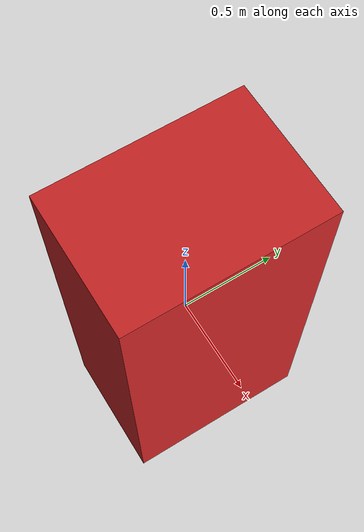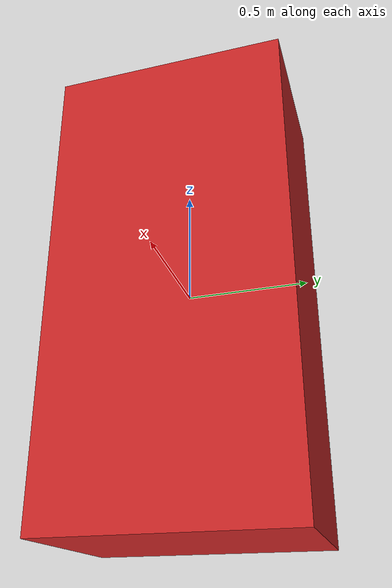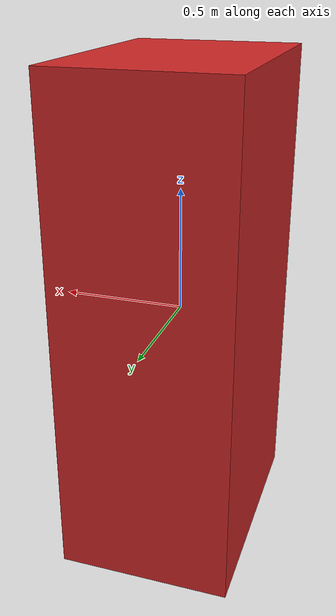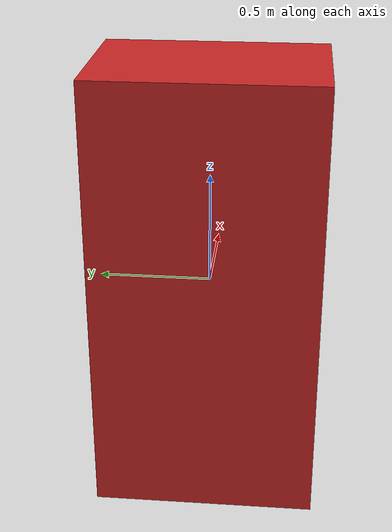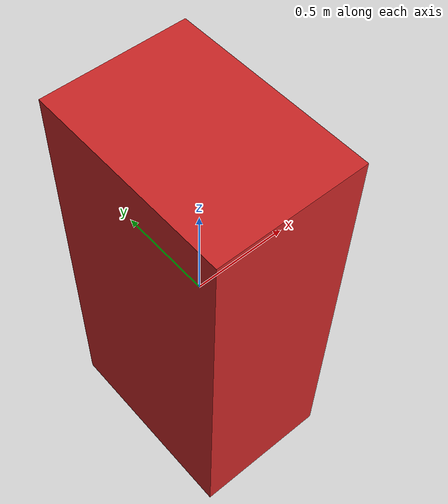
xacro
<?xml version="1.0"?>
<robot name="warning_vis_box" xmlns:xacro="http://ros.org/wiki/xacro">

  <link name="base_link"/>

	<link name="warning_vis_box_link">
		<origin xyz="0 0 0" rpy="0.0 0.0 0.0"/>
    <inertial>
      <origin xyz="0 0 0" rpy="0 0 0"/>
      <mass value="0.1"/>
      <inertia ixx="0.001" ixy="0.0" ixz="0.0" iyy="0.001" iyz="0.0" izz="0.001"/>
    </inertial>
		<visual>
			<origin xyz="0.0 0.0 0.0" rpy="0.0 0.0 0.0"/>
			<geometry>
				<box size="0.7 1.0 2.0"/>
			</geometry>
		</visual>
    <collision>
      <origin xyz="0.0 0.0 -0.9" rpy="0.0 0.0 0.0" />
      <geometry>
				<cylinder radius="0.1" length="0.1"/>
      </geometry>
    </collision>
	</link>

	<joint name="warning_vis_box_joint" type="fixed">
		<parent link="base_link"/>
		<child  link="warning_vis_box_link"/>
		<origin xyz="0.0 0.0 0.0" rpy="0.0 0.0 0.0"/>
		<axis xyz="1 0 0"/>
	</joint>

  <gazebo reference="warning_vis_box_link">
    <material>Gazebo/Red</material>
  </gazebo>

   <!--rpy -> xyz axis-->

</robot>
